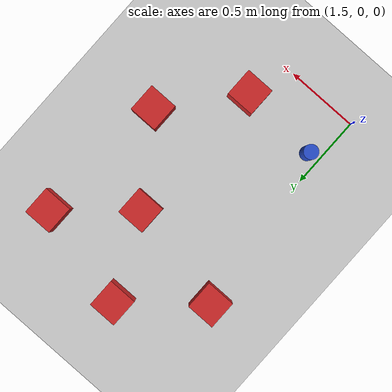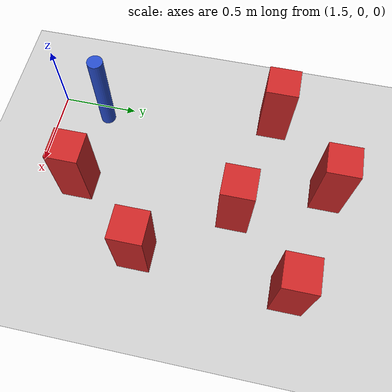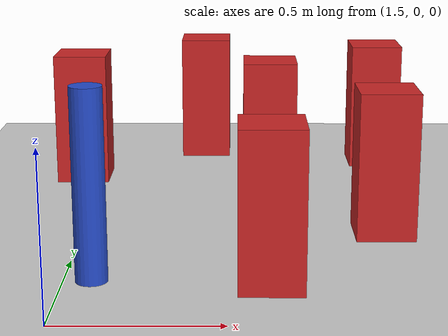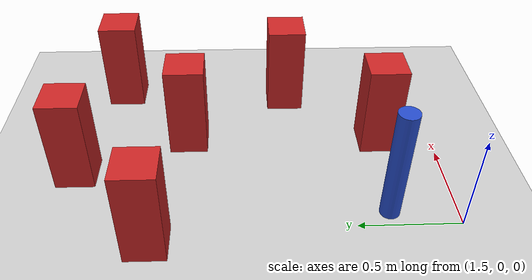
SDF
<sdf version="1.6">
 <world name="default">
  <model name="ground_plane">
   <static>1</static>
   <link name="link">
    <collision name="collision">
     <geometry><plane><normal>0 0 1</normal><size>100 100</size></plane></geometry>
     <surface><friction><ode><mu>100</mu><mu2>50</mu2></ode></friction></surface>
    </collision>
    <visual name="visual">
     <cast_shadows>0</cast_shadows>
     <geometry><plane><normal>0 0 1</normal><size>100 100</size></plane></geometry>
     <material>
      <ambient>1.0 1.0 1.0 1.0</ambient>
      <diffuse>0.8 0.8 0.8 1.0</diffuse>
      <specular>0.01 0.01 0.01 1.000000</specular>
     </material>
    </visual>
   </link>
  </model>
  <model name="square_post_obstacle35">
   <static>true</static>
   <pose>1.41769313077 1.48172580425 8.22691968438e-08 7.2212513382e-06 -7.54495500217e-07 2.29674213826e-05</pose>
   <link name="link">
    <pose>0 0 0.25 0 -0 0</pose>
    <inertial>
     <mass>100</mass>
     <inertia>
      <ixx>0.166667</ixx>
      <ixy>0</ixy>
      <ixz>0</ixz>
      <iyy>0.166667</iyy>
      <iyz>0</iyz>
      <izz>0.166667</izz>
     </inertia>
    </inertial>
    <collision name="collision"><geometry><box><size>.2 .2 .5</size></box></geometry></collision>
    <visual name="visual">
     <geometry><box><size>.2 .2 .5</size></box></geometry>
     <material>
      <script><name>Gazebo/Red</name><uri>file://media/materials/scripts/gazebo.material</uri></script>
     </material>
    </visual>
   </link>
  </model>
  <model name="square_post_obstacle66">
   <static>true</static>
   <pose>2.52376509228 0.782931671548 8.22691968438e-08 7.2212513382e-06 -7.54495500217e-07 2.29674213826e-05</pose>
   <link name="link">
    <pose>0 0 0.25 0 -0 0</pose>
    <inertial>
     <mass>100</mass>
     <inertia>
      <ixx>0.166667</ixx>
      <ixy>0</ixy>
      <ixz>0</ixz>
      <iyy>0.166667</iyy>
      <iyz>0</iyz>
      <izz>0.166667</izz>
     </inertia>
    </inertial>
    <collision name="collision"><geometry><box><size>.2 .2 .5</size></box></geometry></collision>
    <visual name="visual">
     <geometry><box><size>.2 .2 .5</size></box></geometry>
     <material>
      <script><name>Gazebo/Red</name><uri>file://media/materials/scripts/gazebo.material</uri></script>
     </material>
    </visual>
   </link>
  </model>
  <model name="pole_obstacle97">
   <static>true</static>
   <pose>1.58671188744 0.332646929256 2.88873142074e-08 -9.90536689733e-09 4.60219948992e-07 -1.20965994959e-07</pose>
   <link name="link">
    <pose>0 0 0.3 0 -0 0</pose>
    <inertial>
     <mass>1</mass>
     <inertia><ixx>0.145833</ixx><ixy>0</ixy><ixz>0</ixz><iyy>0.145833</iyy><iyz>0</iyz><izz>0.125</izz></inertia>
    </inertial>
    <collision name="collision">
     <geometry><cylinder><radius>0.05</radius><length>.6</length></cylinder></geometry>
    </collision>
    <visual name="visual">
     <geometry><cylinder><radius>0.05</radius><length>.6</length></cylinder></geometry>
     <material>
      <script><name>Gazebo/Blue</name><uri>file://media/materials/scripts/gazebo.material</uri></script>
     </material>
    </visual>
   </link>
  </model>
  <model name="square_post_obstacle102">
   <static>true</static>
   <pose>2.15015196926 1.3253885089 8.22691968438e-08 7.2212513382e-06 -7.54495500217e-07 2.29674213826e-05</pose>
   <link name="link">
    <pose>0 0 0.25 0 -0 0</pose>
    <inertial>
     <mass>100</mass>
     <inertia>
      <ixx>0.166667</ixx>
      <ixy>0</ixy>
      <ixz>0</ixz>
      <iyy>0.166667</iyy>
      <iyz>0</iyz>
      <izz>0.166667</izz>
     </inertia>
    </inertial>
    <collision name="collision"><geometry><box><size>.2 .2 .5</size></box></geometry></collision>
    <visual name="visual">
     <geometry><box><size>.2 .2 .5</size></box></geometry>
     <material>
      <script><name>Gazebo/Red</name><uri>file://media/materials/scripts/gazebo.material</uri></script>
     </material>
    </visual>
   </link>
  </model>
  <model name="square_post_obstacle174">
   <static>true</static>
   <pose>2.59353296787 1.71707746816 8.22691968438e-08 7.2212513382e-06 -7.54495500217e-07 2.29674213826e-05</pose>
   <link name="link">
    <pose>0 0 0.25 0 -0 0</pose>
    <inertial>
     <mass>100</mass>
     <inertia>
      <ixx>0.166667</ixx>
      <ixy>0</ixy>
      <ixz>0</ixz>
      <iyy>0.166667</iyy>
      <iyz>0</iyz>
      <izz>0.166667</izz>
     </inertia>
    </inertial>
    <collision name="collision"><geometry><box><size>.2 .2 .5</size></box></geometry></collision>
    <visual name="visual">
     <geometry><box><size>.2 .2 .5</size></box></geometry>
     <material>
      <script><name>Gazebo/Red</name><uri>file://media/materials/scripts/gazebo.material</uri></script>
     </material>
    </visual>
   </link>
  </model>
  <model name="square_post_obstacle205">
   <static>true</static>
   <pose>2.12683715136 0.300993379198 8.22691968438e-08 7.2212513382e-06 -7.54495500217e-07 2.29674213826e-05</pose>
   <link name="link">
    <pose>0 0 0.25 0 -0 0</pose>
    <inertial>
     <mass>100</mass>
     <inertia>
      <ixx>0.166667</ixx>
      <ixy>0</ixy>
      <ixz>0</ixz>
      <iyy>0.166667</iyy>
      <iyz>0</iyz>
      <izz>0.166667</izz>
     </inertia>
    </inertial>
    <collision name="collision"><geometry><box><size>.2 .2 .5</size></box></geometry></collision>
    <visual name="visual">
     <geometry><box><size>.2 .2 .5</size></box></geometry>
     <material>
      <script><name>Gazebo/Red</name><uri>file://media/materials/scripts/gazebo.material</uri></script>
     </material>
    </visual>
   </link>
  </model>
  <model name="square_post_obstacle207">
   <static>true</static>
   <pose>1.89414489653 1.88601920286 8.22691968438e-08 7.2212513382e-06 -7.54495500217e-07 2.29674213826e-05</pose>
   <link name="link">
    <pose>0 0 0.25 0 -0 0</pose>
    <inertial>
     <mass>100</mass>
     <inertia>
      <ixx>0.166667</ixx>
      <ixy>0</ixy>
      <ixz>0</ixz>
      <iyy>0.166667</iyy>
      <iyz>0</iyz>
      <izz>0.166667</izz>
     </inertia>
    </inertial>
    <collision name="collision"><geometry><box><size>.2 .2 .5</size></box></geometry></collision>
    <visual name="visual">
     <geometry><box><size>.2 .2 .5</size></box></geometry>
     <material>
      <script><name>Gazebo/Red</name><uri>file://media/materials/scripts/gazebo.material</uri></script>
     </material>
    </visual>
   </link>
  </model>
 </world>
</sdf>
